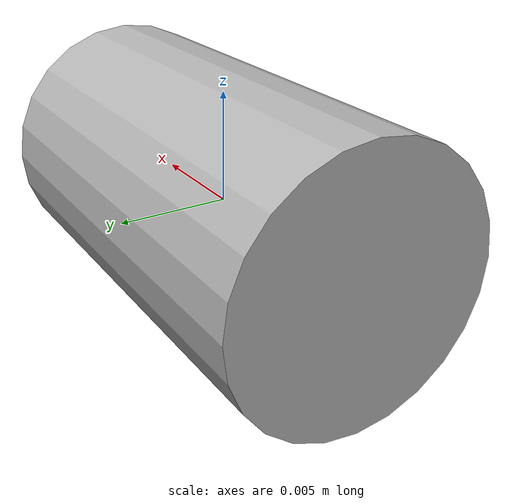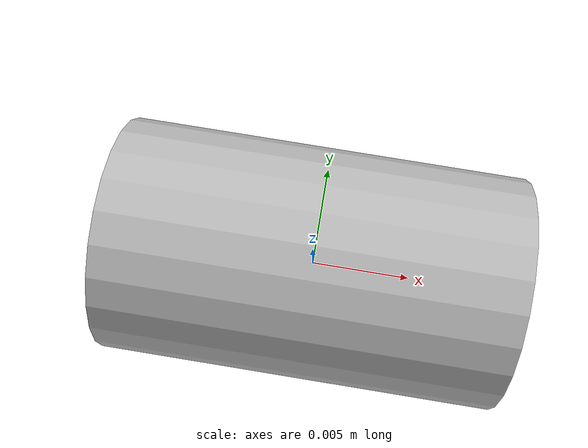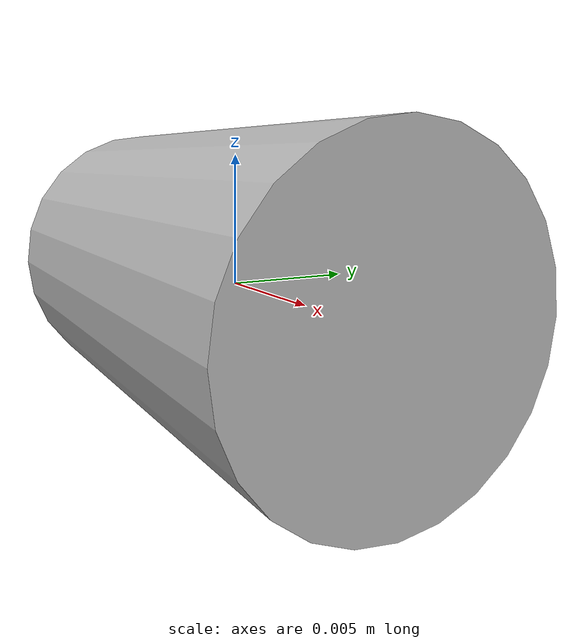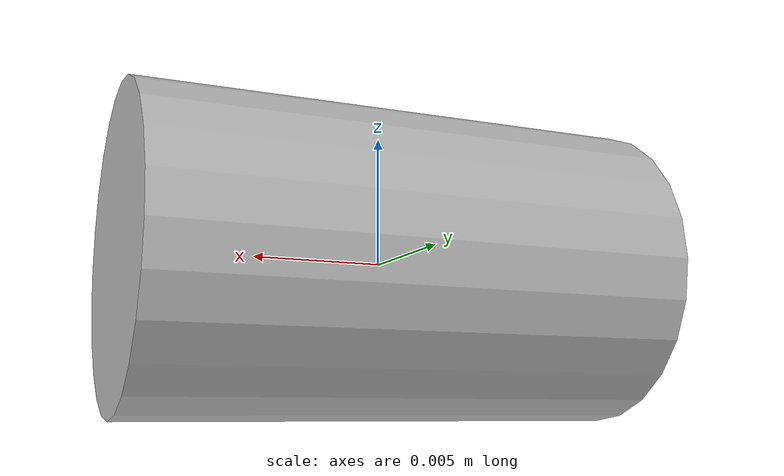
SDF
<?xml version="1.0" ?>
<sdf version="1.5">
	<model name="sonar_down">
		<link name="sonar_down_link">
			<gravity>0</gravity>
			<kinematic>0</kinematic>
			<visual name="visual">
        <pose>0 0 0 0 1.5708 0</pose>
        <geometry>
          <cylinder>
            <radius>0.006</radius> <!-- diameter of sensing head -->
            <length>0.02</length> <!-- length of sensor body, var 0.046 -->
          </cylinder>
        </geometry>
      </visual>

			<inertial>
				<mass>0.05</mass>
				<inertia>
					<ixx>1e-05</ixx>
					<ixy>0</ixy>
					<ixz>0</ixz>
					<iyy>1e-05</iyy>
					<iyz>0</iyz>
					<izz>1e-05</izz>
				</inertia>
			</inertial>

			<sensor type="ray" name="sonar">
				<pose>0 0 0 0 0 0</pose>
        <visualize>false</visualize>
        <always_on>1</always_on>
				<ray>
					<scan>
						<horizontal>
              <samples>25</samples>
              <resolution>1.0</resolution>
              <min_angle>-0.479965544</min_angle>
              <max_angle>0.479965544</max_angle>
            </horizontal>
            <vertical>
              <samples>25</samples>
              <resolution>1</resolution>
              <min_angle>-0.479965544</min_angle>
              <max_angle>0.479965544</max_angle>
            </vertical>
					</scan>
					<range>
						<min>0.03</min>
						<max>6.0</max>
						<resolution>0.03</resolution>
					</range>
				</ray>

				<plugin name="gazebo_ros_range" filename="libgazebo_ros_range.so">
				  <gaussianNoise>0.001</gaussianNoise>
				  <alwaysOn>true</alwaysOn>
				  <updateRate>13.7</updateRate>
					<topicName>/sonar_down/range</topicName>
					<frameName>/sonar_down_link</frameName>
					<radiation>ultrasound</radiation> <!-- ultrasound or infrared -->
				</plugin>
			</sensor>
		</link>
	</model>
</sdf>
